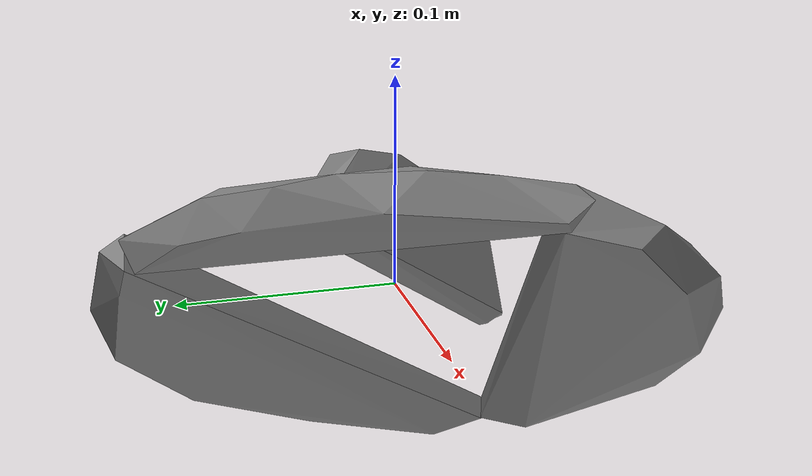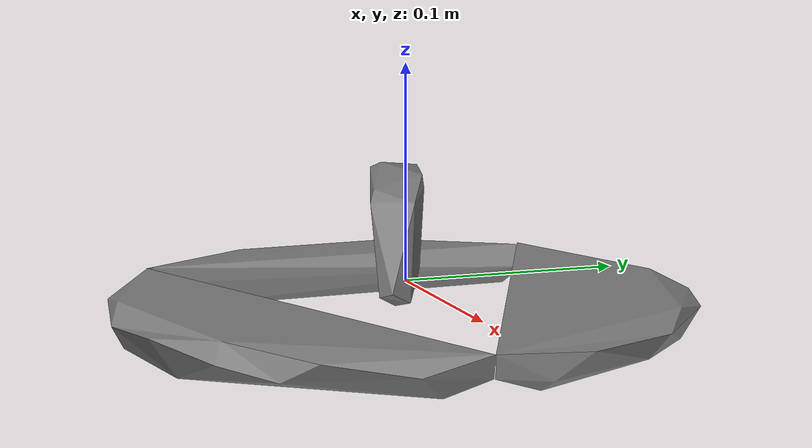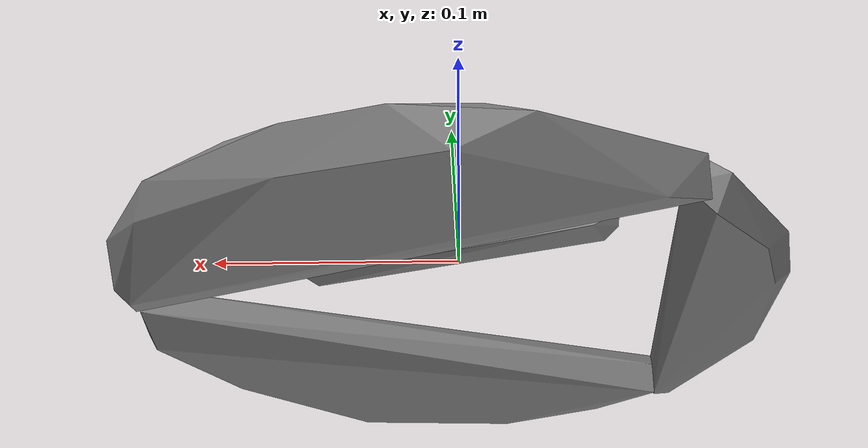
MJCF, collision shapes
<mujoco model="skillet_lid">
  <compiler angle="radian" />

  <asset>
    <mesh name="skillet_lid_visual_mesh" file="skillet_lid/textured.obj" />
    <mesh name="skillet_lid_collision_mesh_0" file="skillet_lid/textured_coacd_0.stl" />
    <mesh name="skillet_lid_collision_mesh_1" file="skillet_lid/textured_coacd_1.stl" />
    <mesh name="skillet_lid_collision_mesh_2" file="skillet_lid/textured_coacd_2.stl" />
    <mesh name="skillet_lid_collision_mesh_3" file="skillet_lid/textured_coacd_3.stl" />
    <texture name="skillet_lid_texture" type="2d" file="skillet_lid/texture_map.png" />
    <material name="skillet_lid_material" texture="skillet_lid_texture" />
  </asset>

  <worldbody>
    <body name="skillet_lid" pos="0 0 0" euler="0 0 0">
      <freejoint name="skillet_lid_joint" />
      <geom name="skillet_lid_visual_geom" type="mesh" mesh="skillet_lid_visual_mesh" material="skillet_lid_material" pos="-0.0046148964588229565 -0.028319651848624068 -0.02009889767674283" euler="0 0 0" contype="0" conaffinity="0" group="0" />
      <geom name="skillet_lid_collision_geom_0" type="mesh" mesh="skillet_lid_collision_mesh_0" pos="-0.0046148964588229565 -0.028319651848624068 -0.02009889767674283" euler="0 0 0" contype="1" conaffinity="1" group="3" />
      <geom name="skillet_lid_collision_geom_1" type="mesh" mesh="skillet_lid_collision_mesh_1" pos="-0.0046148964588229565 -0.028319651848624068 -0.02009889767674283" euler="0 0 0" contype="1" conaffinity="1" group="3" />
      <geom name="skillet_lid_collision_geom_2" type="mesh" mesh="skillet_lid_collision_mesh_2" pos="-0.0046148964588229565 -0.028319651848624068 -0.02009889767674283" euler="0 0 0" contype="1" conaffinity="1" group="3" />
      <geom name="skillet_lid_collision_geom_3" type="mesh" mesh="skillet_lid_collision_mesh_3" pos="-0.0046148964588229565 -0.028319651848624068 -0.02009889767674283" euler="0 0 0" contype="1" conaffinity="1" group="3" />
      <inertial pos="0 0 0" euler="0 0 0" mass="0.652" diaginertia="0.001 0.001 0.001" />
    </body>
  </worldbody>
</mujoco>
